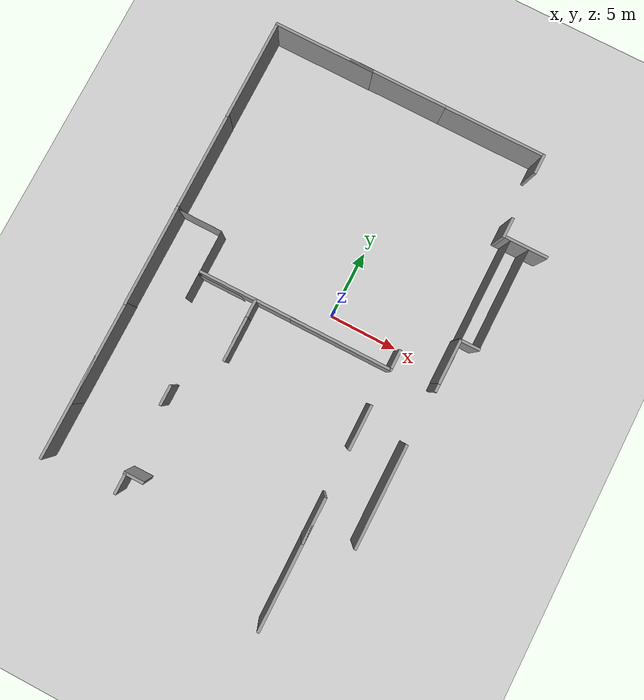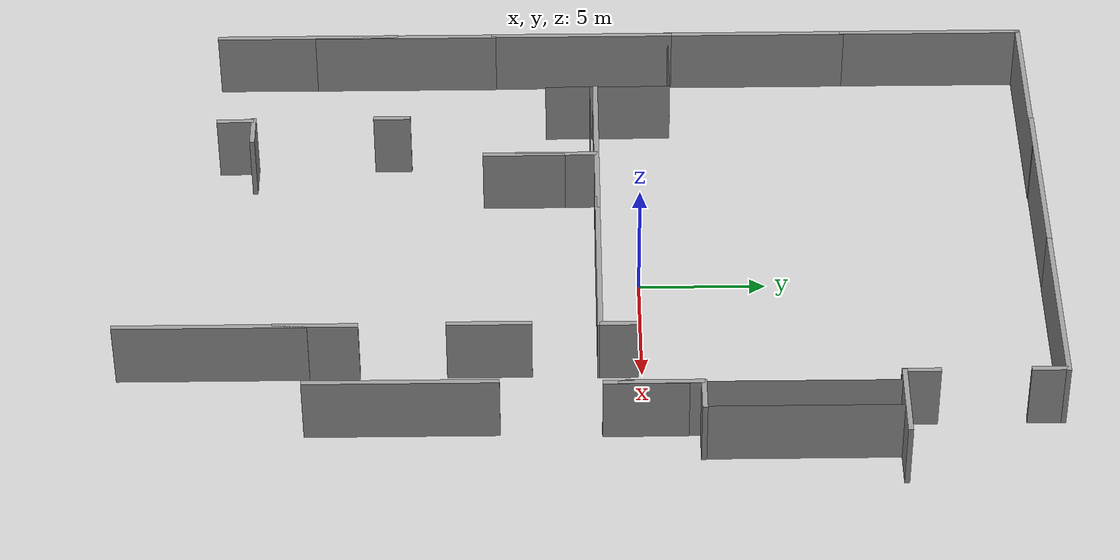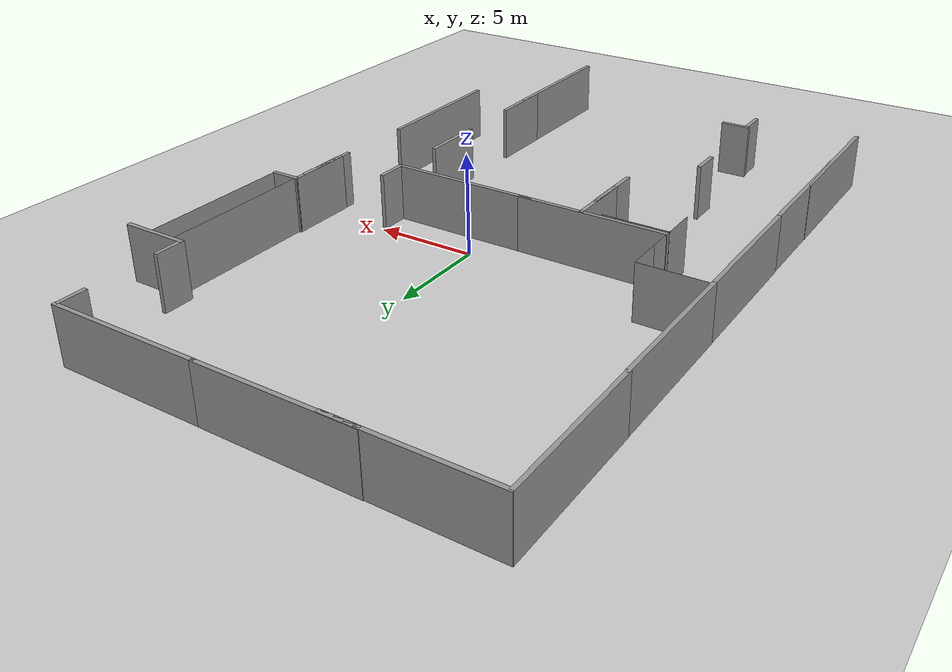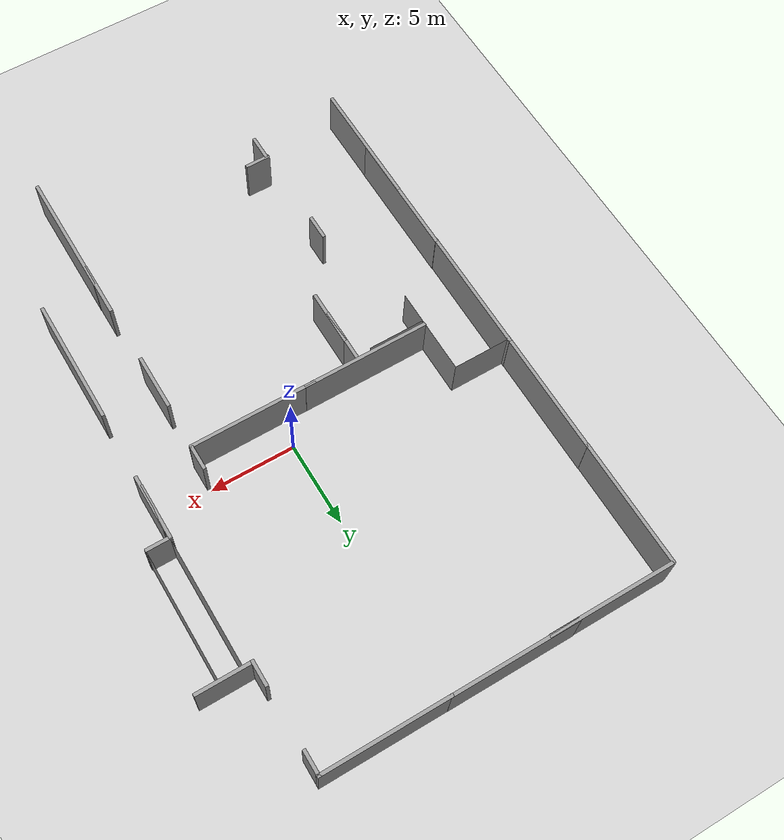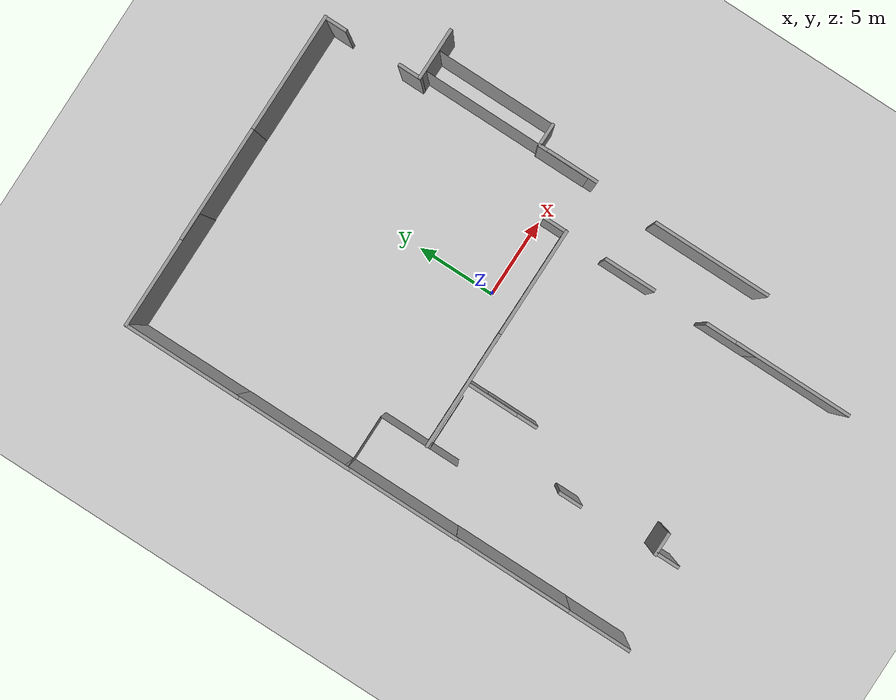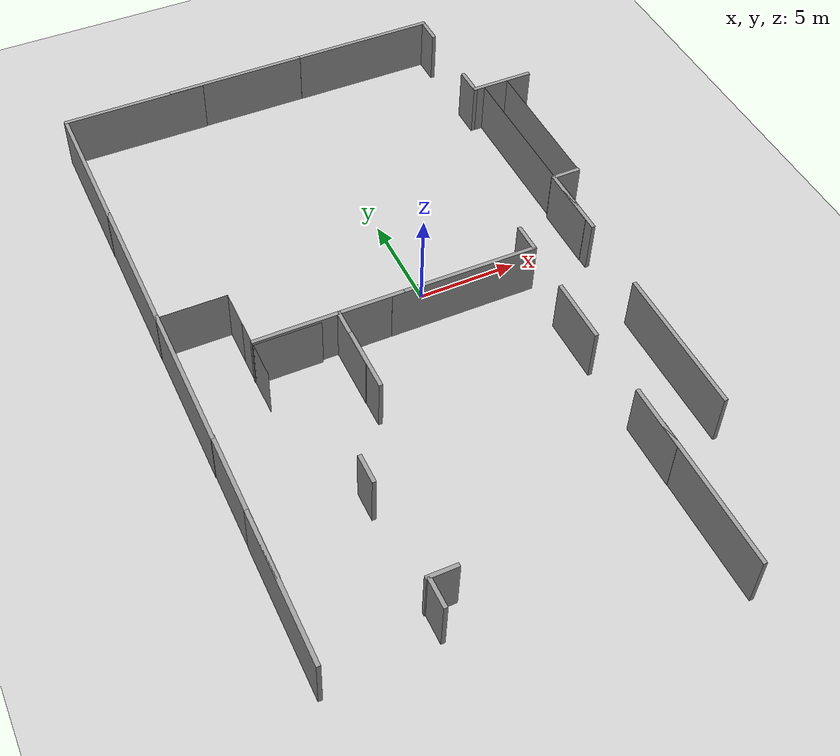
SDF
<sdf version="1.7">
 <world name="default">
  <model name="ground_plane">
   <static>1</static>
   <link name="link">
    <collision name="collision">
     <geometry><plane><normal>0 0 1</normal><size>100 100</size></plane></geometry>
     <surface>
      <contact><collide_bitmask>65535</collide_bitmask></contact>
      <friction><ode><mu>100</mu><mu2>50</mu2></ode></friction>
     </surface>
    </collision>
    <visual name="visual">
     <cast_shadows>0</cast_shadows>
     <geometry><plane><normal>0 0 1</normal><size>100 100</size></plane></geometry>
     <material>
      <script><uri>file://media/materials/scripts/gazebo.material</uri><name>Gazebo/Grey</name></script>
     </material>
    </visual>
   </link>
  </model>
  <model name="grey_wall">
   <static>1</static>
   <link name="link">
    <pose>0 0 1.4 0 -0 0</pose>
    <collision name="collision"><geometry><box><size>7.5 0.2 2.8</size></box></geometry></collision>
    <visual name="visual">
     <cast_shadows>0</cast_shadows>
     <geometry><box><size>7.5 0.2 2.8</size></box></geometry>
     <material>
      <script>
       <uri>model://grey_wall/materials/scripts</uri>
       <uri>model://grey_wall/materials/textures</uri>
       <name>vrc/grey_wall</name>
      </script>
     </material>
    </visual>
   </link>
   <pose>4.11766 16.0782 0 0 -0 0</pose>
  </model>
  <model name="grey_wall_clone">
   <static>1</static>
   <link name="link">
    <pose>0 0 1.4 0 -0 0</pose>
    <collision name="collision"><geometry><box><size>7.5 0.2 2.8</size></box></geometry></collision>
    <visual name="visual">
     <cast_shadows>0</cast_shadows>
     <geometry><box><size>7.5 0.2 2.8</size></box></geometry>
     <material>
      <script>
       <uri>model://grey_wall/materials/scripts</uri>
       <uri>model://grey_wall/materials/textures</uri>
       <name>vrc/grey_wall</name>
      </script>
     </material>
    </visual>
   </link>
   <pose>-3.2022 16.0851 0 0 -0 0</pose>
  </model>
  <model name="grey_wall_clone_0">
   <static>1</static>
   <link name="link">
    <pose>0 0 1.4 0 -0 0</pose>
    <collision name="collision"><geometry><box><size>7.5 0.2 2.8</size></box></geometry></collision>
    <visual name="visual">
     <cast_shadows>0</cast_shadows>
     <geometry><box><size>7.5 0.2 2.8</size></box></geometry>
     <material>
      <script>
       <uri>model://grey_wall/materials/scripts</uri>
       <uri>model://grey_wall/materials/textures</uri>
       <name>vrc/grey_wall</name>
      </script>
     </material>
    </visual>
   </link>
   <pose>-8.91594 16.0599 0 0 -0 0</pose>
  </model>
  <model name="grey_wall_clone_2">
   <static>1</static>
   <link name="link">
    <pose>0 0 1.4 0 -0 0</pose>
    <collision name="collision"><geometry><box><size>7.5 0.2 2.8</size></box></geometry></collision>
    <visual name="visual">
     <cast_shadows>0</cast_shadows>
     <geometry><box><size>7.5 0.2 2.8</size></box></geometry>
     <material>
      <script>
       <uri>model://grey_wall/materials/scripts</uri>
       <uri>model://grey_wall/materials/textures</uri>
       <name>vrc/grey_wall</name>
      </script>
     </material>
    </visual>
   </link>
   <pose>-12.5815 12.3763 0 0 0 -1.5708</pose>
  </model>
  <model name="grey_wall_clone_2_clone">
   <static>1</static>
   <link name="link">
    <pose>0 0 1.4 0 -0 0</pose>
    <collision name="collision"><geometry><box><size>7.5 0.2 2.8</size></box></geometry></collision>
    <visual name="visual">
     <cast_shadows>0</cast_shadows>
     <geometry><box><size>7.5 0.2 2.8</size></box></geometry>
     <material>
      <script>
       <uri>model://grey_wall/materials/scripts</uri>
       <uri>model://grey_wall/materials/textures</uri>
       <name>vrc/grey_wall</name>
      </script>
     </material>
    </visual>
   </link>
   <pose>-12.5695 5.05048 0 0 0 -1.5708</pose>
  </model>
  <model name="grey_wall_clone_2_clone_0">
   <static>1</static>
   <link name="link">
    <pose>0 0 1.4 0 -0 0</pose>
    <collision name="collision"><geometry><box><size>7.5 0.2 2.8</size></box></geometry></collision>
    <visual name="visual">
     <cast_shadows>0</cast_shadows>
     <geometry><box><size>7.5 0.2 2.8</size></box></geometry>
     <material>
      <script>
       <uri>model://grey_wall/materials/scripts</uri>
       <uri>model://grey_wall/materials/textures</uri>
       <name>vrc/grey_wall</name>
      </script>
     </material>
    </visual>
   </link>
   <pose>-12.5572 -2.13055 0 0 0 -1.5708</pose>
  </model>
  <model name="grey_wall_clone_2_clone_1">
   <static>1</static>
   <link name="link">
    <pose>0 0 1.4 0 -0 0</pose>
    <collision name="collision"><geometry><box><size>7.5 0.2 2.8</size></box></geometry></collision>
    <visual name="visual">
     <cast_shadows>0</cast_shadows>
     <geometry><box><size>7.5 0.2 2.8</size></box></geometry>
     <material>
      <script>
       <uri>model://grey_wall/materials/scripts</uri>
       <uri>model://grey_wall/materials/textures</uri>
       <name>vrc/grey_wall</name>
      </script>
     </material>
    </visual>
   </link>
   <pose>-12.5371 -9.45403 0 0 0 -1.5708</pose>
  </model>
  <model name="grey_wall_clone_2_clone_2">
   <static>1</static>
   <link name="link">
    <pose>0 0 1.4 0 -0 0</pose>
    <collision name="collision"><geometry><box><size>7.5 0.2 2.8</size></box></geometry></collision>
    <visual name="visual">
     <cast_shadows>0</cast_shadows>
     <geometry><box><size>7.5 0.2 2.8</size></box></geometry>
     <material>
      <script>
       <uri>model://grey_wall/materials/scripts</uri>
       <uri>model://grey_wall/materials/textures</uri>
       <name>vrc/grey_wall</name>
      </script>
     </material>
    </visual>
   </link>
   <pose>-12.5493 -13.5009 0 0 0 -1.5708</pose>
  </model>
  <model name="half_slim_grey_wall">
   <link name="link">
    <pose>0 0 1.4 0 -0 0</pose>
    <inertial>
     <mass>1</mass>
     <inertia><ixx>1</ixx><ixy>0</ixy><ixz>0</ixz><iyy>1</iyy><iyz>0</iyz><izz>1</izz></inertia>
    </inertial>
    <visual name="visual">
     <cast_shadows>0</cast_shadows>
     <geometry><box><size>3.3 0.0001 2.8</size></box></geometry>
     <material>
      <script>
       <uri>model://grey_wall/materials/scripts</uri>
       <uri>model://grey_wall/materials/textures</uri>
       <name>vrc/grey_wall</name>
      </script>
      <shader type="pixel"><normal_map>__default__</normal_map></shader>
      <ambient>1 1 1 1</ambient>
      <diffuse>1 1 1 1</diffuse>
      <specular>0 0 0 1</specular>
      <emissive>0 0 0 1</emissive>
     </material>
    </visual>
    <collision name="collision">
     <geometry><box><size>3.3 0.2 2.8</size></box></geometry>
     <surface>
      <friction>
       <ode><mu>1</mu><mu2>1</mu2><fdir1>0 0 0</fdir1><slip1>0</slip1><slip2>0</slip2></ode>
       <torsional>
        <coefficient>1</coefficient>
        <patch_radius>0</patch_radius>
        <surface_radius>0</surface_radius>
        <use_patch_radius>1</use_patch_radius>
        <ode><slip>0</slip></ode>
       </torsional>
      </friction>
      <bounce><restitution_coefficient>0</restitution_coefficient><threshold>1e+06</threshold></bounce>
      <contact>
       <collide_without_contact>0</collide_without_contact>
       <collide_without_contact_bitmask>1</collide_without_contact_bitmask>
       <collide_bitmask>1</collide_bitmask>
       <ode>
        <soft_cfm>0</soft_cfm>
        <soft_erp>0.2</soft_erp>
        <kp>1e+13</kp>
        <kd>1</kd>
        <max_vel>0.01</max_vel>
        <min_depth>0</min_depth>
       </ode>
       <bullet>
        <split_impulse>1</split_impulse>
        <split_impulse_penetration_threshold>-0.01</split_impulse_penetration_threshold>
        <soft_cfm>0</soft_cfm>
        <soft_erp>0.2</soft_erp>
        <kp>1e+13</kp>
        <kd>1</kd>
       </bullet>
      </contact>
     </surface>
    </collision>
   </link>
   <static>1</static>
   <pose>-10.8124 1.45364 0 0 -0 0</pose>
  </model>
  <model name="half_slim_grey_wall_clone">
   <link name="link">
    <pose>0 0 1.4 0 -0 0</pose>
    <inertial>
     <mass>1</mass>
     <inertia><ixx>1</ixx><ixy>0</ixy><ixz>0</ixz><iyy>1</iyy><iyz>0</iyz><izz>1</izz></inertia>
    </inertial>
    <visual name="visual">
     <cast_shadows>0</cast_shadows>
     <geometry><box><size>3.3 0.0001 2.8</size></box></geometry>
     <material>
      <script>
       <uri>model://grey_wall/materials/scripts</uri>
       <uri>model://grey_wall/materials/textures</uri>
       <name>vrc/grey_wall</name>
      </script>
      <shader type="pixel"><normal_map>__default__</normal_map></shader>
      <ambient>1 1 1 1</ambient>
      <diffuse>1 1 1 1</diffuse>
      <specular>0 0 0 1</specular>
      <emissive>0 0 0 1</emissive>
     </material>
    </visual>
    <collision name="collision">
     <geometry><box><size>3.3 0.2 2.8</size></box></geometry>
     <surface>
      <friction>
       <ode><mu>1</mu><mu2>1</mu2><fdir1>0 0 0</fdir1><slip1>0</slip1><slip2>0</slip2></ode>
       <torsional>
        <coefficient>1</coefficient>
        <patch_radius>0</patch_radius>
        <surface_radius>0</surface_radius>
        <use_patch_radius>1</use_patch_radius>
        <ode><slip>0</slip></ode>
       </torsional>
      </friction>
      <bounce><restitution_coefficient>0</restitution_coefficient><threshold>1e+06</threshold></bounce>
      <contact>
       <collide_without_contact>0</collide_without_contact>
       <collide_without_contact_bitmask>1</collide_without_contact_bitmask>
       <collide_bitmask>1</collide_bitmask>
       <ode>
        <soft_cfm>0</soft_cfm>
        <soft_erp>0.2</soft_erp>
        <kp>1e+13</kp>
        <kd>1</kd>
        <max_vel>0.01</max_vel>
        <min_depth>0</min_depth>
       </ode>
       <bullet>
        <split_impulse>1</split_impulse>
        <split_impulse_penetration_threshold>-0.01</split_impulse_penetration_threshold>
        <soft_cfm>0</soft_cfm>
        <soft_erp>0.2</soft_erp>
        <kp>1e+13</kp>
        <kd>1</kd>
       </bullet>
      </contact>
     </surface>
    </collision>
   </link>
   <static>1</static>
   <pose>-9.17654 -0.189793 0 0 0 -1.5708</pose>
  </model>
  <model name="slim_grey_wall">
   <link name="link">
    <pose>0 0 1.4 0 -0 0</pose>
    <inertial>
     <mass>1</mass>
     <inertia><ixx>1</ixx><ixy>0</ixy><ixz>0</ixz><iyy>1</iyy><iyz>0</iyz><izz>1</izz></inertia>
    </inertial>
    <visual name="visual">
     <cast_shadows>0</cast_shadows>
     <geometry><box><size>7.5 0.0001 2.8</size></box></geometry>
     <material>
      <script>
       <uri>model://grey_wall/materials/scripts</uri>
       <uri>model://grey_wall/materials/textures</uri>
       <name>vrc/grey_wall</name>
      </script>
      <shader type="pixel"><normal_map>__default__</normal_map></shader>
      <ambient>1 1 1 1</ambient>
      <diffuse>1 1 1 1</diffuse>
      <specular>0 0 0 1</specular>
      <emissive>0 0 0 1</emissive>
     </material>
    </visual>
    <collision name="collision">
     <geometry><box><size>7.5 0.2 2.8</size></box></geometry>
     <surface>
      <friction>
       <ode><mu>1</mu><mu2>1</mu2><fdir1>0 0 0</fdir1><slip1>0</slip1><slip2>0</slip2></ode>
       <torsional>
        <coefficient>1</coefficient>
        <patch_radius>0</patch_radius>
        <surface_radius>0</surface_radius>
        <use_patch_radius>1</use_patch_radius>
        <ode><slip>0</slip></ode>
       </torsional>
      </friction>
      <bounce><restitution_coefficient>0</restitution_coefficient><threshold>1e+06</threshold></bounce>
      <contact>
       <collide_without_contact>0</collide_without_contact>
       <collide_without_contact_bitmask>1</collide_without_contact_bitmask>
       <collide_bitmask>1</collide_bitmask>
       <ode>
        <soft_cfm>0</soft_cfm>
        <soft_erp>0.2</soft_erp>
        <kp>1e+13</kp>
        <kd>1</kd>
        <max_vel>0.01</max_vel>
        <min_depth>0</min_depth>
       </ode>
       <bullet>
        <split_impulse>1</split_impulse>
        <split_impulse_penetration_threshold>-0.01</split_impulse_penetration_threshold>
        <soft_cfm>0</soft_cfm>
        <soft_erp>0.2</soft_erp>
        <kp>1e+13</kp>
        <kd>1</kd>
       </bullet>
      </contact>
     </surface>
    </collision>
   </link>
   <static>1</static>
   <pose>8.30317 6.07879 0 0 0 -1.5708</pose>
  </model>
  <model name="slim_grey_wall_clone">
   <link name="link">
    <pose>0 0 1.4 0 -0 0</pose>
    <inertial>
     <mass>1</mass>
     <inertia><ixx>1</ixx><ixy>0</ixy><ixz>0</ixz><iyy>1</iyy><iyz>0</iyz><izz>1</izz></inertia>
    </inertial>
    <visual name="visual">
     <cast_shadows>0</cast_shadows>
     <geometry><box><size>7.5 0.0001 2.8</size></box></geometry>
     <material>
      <script>
       <uri>model://grey_wall/materials/scripts</uri>
       <uri>model://grey_wall/materials/textures</uri>
       <name>vrc/grey_wall</name>
      </script>
      <shader type="pixel"><normal_map>__default__</normal_map></shader>
      <ambient>1 1 1 1</ambient>
      <diffuse>1 1 1 1</diffuse>
      <specular>0 0 0 1</specular>
      <emissive>0 0 0 1</emissive>
     </material>
    </visual>
    <collision name="collision">
     <geometry><box><size>7.5 0.2 2.8</size></box></geometry>
     <surface>
      <friction>
       <ode><mu>1</mu><mu2>1</mu2><fdir1>0 0 0</fdir1><slip1>0</slip1><slip2>0</slip2></ode>
       <torsional>
        <coefficient>1</coefficient>
        <patch_radius>0</patch_radius>
        <surface_radius>0</surface_radius>
        <use_patch_radius>1</use_patch_radius>
        <ode><slip>0</slip></ode>
       </torsional>
      </friction>
      <bounce><restitution_coefficient>0</restitution_coefficient><threshold>1e+06</threshold></bounce>
      <contact>
       <collide_without_contact>0</collide_without_contact>
       <collide_without_contact_bitmask>1</collide_without_contact_bitmask>
       <collide_bitmask>1</collide_bitmask>
       <ode>
        <soft_cfm>0</soft_cfm>
        <soft_erp>0.2</soft_erp>
        <kp>1e+13</kp>
        <kd>1</kd>
        <max_vel>0.01</max_vel>
        <min_depth>0</min_depth>
       </ode>
       <bullet>
        <split_impulse>1</split_impulse>
        <split_impulse_penetration_threshold>-0.01</split_impulse_penetration_threshold>
        <soft_cfm>0</soft_cfm>
        <soft_erp>0.2</soft_erp>
        <kp>1e+13</kp>
        <kd>1</kd>
       </bullet>
      </contact>
     </surface>
    </collision>
   </link>
   <static>1</static>
   <pose>9.64703 6.00773 0 0 0 -1.5708</pose>
  </model>
  <model name="half_slim_grey_wall_clone_clone">
   <link name="link">
    <pose>0 0 1.4 0 -0 0</pose>
    <inertial>
     <mass>1</mass>
     <inertia><ixx>1</ixx><ixy>0</ixy><ixz>0</ixz><iyy>1</iyy><iyz>0</iyz><izz>1</izz></inertia>
    </inertial>
    <visual name="visual">
     <cast_shadows>0</cast_shadows>
     <geometry><box><size>3.3 0.0001 2.8</size></box></geometry>
     <material>
      <script>
       <uri>model://grey_wall/materials/scripts</uri>
       <uri>model://grey_wall/materials/textures</uri>
       <name>vrc/grey_wall</name>
      </script>
      <shader type="pixel"><normal_map>__default__</normal_map></shader>
      <ambient>1 1 1 1</ambient>
      <diffuse>1 1 1 1</diffuse>
      <specular>0 0 0 1</specular>
      <emissive>0 0 0 1</emissive>
     </material>
    </visual>
    <collision name="collision">
     <geometry><box><size>3.3 0.2 2.8</size></box></geometry>
     <surface>
      <friction>
       <ode><mu>1</mu><mu2>1</mu2><fdir1>0 0 0</fdir1><slip1>0</slip1><slip2>0</slip2></ode>
       <torsional>
        <coefficient>1</coefficient>
        <patch_radius>0</patch_radius>
        <surface_radius>0</surface_radius>
        <use_patch_radius>1</use_patch_radius>
        <ode><slip>0</slip></ode>
       </torsional>
      </friction>
      <bounce><restitution_coefficient>0</restitution_coefficient><threshold>1e+06</threshold></bounce>
      <contact>
       <collide_without_contact>0</collide_without_contact>
       <collide_without_contact_bitmask>1</collide_without_contact_bitmask>
       <collide_bitmask>1</collide_bitmask>
       <ode>
        <soft_cfm>0</soft_cfm>
        <soft_erp>0.2</soft_erp>
        <kp>1e+13</kp>
        <kd>1</kd>
        <max_vel>0.01</max_vel>
        <min_depth>0</min_depth>
       </ode>
       <bullet>
        <split_impulse>1</split_impulse>
        <split_impulse_penetration_threshold>-0.01</split_impulse_penetration_threshold>
        <soft_cfm>0</soft_cfm>
        <soft_erp>0.2</soft_erp>
        <kp>1e+13</kp>
        <kd>1</kd>
       </bullet>
      </contact>
     </surface>
    </collision>
   </link>
   <static>1</static>
   <pose>-9.17683 -1.99265 0 0 0 -1.5708</pose>
  </model>
  <model name="grey_wall_clone_0_clone">
   <static>1</static>
   <link name="link">
    <pose>0 0 1.4 0 -0 0</pose>
    <collision name="collision"><geometry><box><size>7.5 0.2 2.8</size></box></geometry></collision>
    <visual name="visual">
     <cast_shadows>0</cast_shadows>
     <geometry><box><size>7.5 0.2 2.8</size></box></geometry>
     <material>
      <script>
       <uri>model://grey_wall/materials/scripts</uri>
       <uri>model://grey_wall/materials/textures</uri>
       <name>vrc/grey_wall</name>
      </script>
     </material>
    </visual>
   </link>
   <pose>-5.45445 -1.61024 0 0 -0 0</pose>
  </model>
  <model name="grey_wall_clone_0_clone_0">
   <static>1</static>
   <link name="link">
    <pose>0 0 1.4 0 -0 0</pose>
    <collision name="collision"><geometry><box><size>7.5 0.2 2.8</size></box></geometry></collision>
    <visual name="visual">
     <cast_shadows>0</cast_shadows>
     <geometry><box><size>7.5 0.2 2.8</size></box></geometry>
     <material>
      <script>
       <uri>model://grey_wall/materials/scripts</uri>
       <uri>model://grey_wall/materials/textures</uri>
       <name>vrc/grey_wall</name>
      </script>
     </material>
    </visual>
   </link>
   <pose>1.39307 -1.61725 0 0 -0 0</pose>
  </model>
  <model name="grey_wall_clone_2_clone_clone_clone">
   <static>1</static>
   <link name="link">
    <pose>0 0 1.4 0 -0 0</pose>
    <collision name="collision"><geometry><box><size>7.5 0.2 2.8</size></box></geometry></collision>
    <visual name="visual">
     <cast_shadows>0</cast_shadows>
     <geometry><box><size>7.5 0.2 2.8</size></box></geometry>
     <material>
      <script>
       <uri>model://grey_wall/materials/scripts</uri>
       <uri>model://grey_wall/materials/textures</uri>
       <name>vrc/grey_wall</name>
      </script>
     </material>
    </visual>
   </link>
   <pose>5.03836 -16.6141 0 0 0 -1.5708</pose>
  </model>
  <model name="half_slim_grey_wall_clone_0">
   <link name="link">
    <pose>0 0 1.4 0 -0 0</pose>
    <inertial>
     <mass>1</mass>
     <inertia><ixx>1</ixx><ixy>0</ixy><ixz>0</ixz><iyy>1</iyy><iyz>0</iyz><izz>1</izz></inertia>
    </inertial>
    <visual name="visual">
     <cast_shadows>0</cast_shadows>
     <geometry><box><size>3.3 0.0001 2.8</size></box></geometry>
     <material>
      <script>
       <uri>model://grey_wall/materials/scripts</uri>
       <uri>model://grey_wall/materials/textures</uri>
       <name>vrc/grey_wall</name>
      </script>
      <shader type="pixel"><normal_map>__default__</normal_map></shader>
      <ambient>1 1 1 1</ambient>
      <diffuse>1 1 1 1</diffuse>
      <specular>0 0 0 1</specular>
      <emissive>0 0 0 1</emissive>
     </material>
    </visual>
    <collision name="collision">
     <geometry><box><size>3.3 0.2 2.8</size></box></geometry>
     <surface>
      <friction>
       <ode><mu>1</mu><mu2>1</mu2><fdir1>0 0 0</fdir1><slip1>0</slip1><slip2>0</slip2></ode>
       <torsional>
        <coefficient>1</coefficient>
        <patch_radius>0</patch_radius>
        <surface_radius>0</surface_radius>
        <use_patch_radius>1</use_patch_radius>
        <ode><slip>0</slip></ode>
       </torsional>
      </friction>
      <bounce><restitution_coefficient>0</restitution_coefficient><threshold>1e+06</threshold></bounce>
      <contact>
       <collide_without_contact>0</collide_without_contact>
       <collide_without_contact_bitmask>1</collide_without_contact_bitmask>
       <collide_bitmask>1</collide_bitmask>
       <ode>
        <soft_cfm>0</soft_cfm>
        <soft_erp>0.2</soft_erp>
        <kp>1e+13</kp>
        <kd>1</kd>
        <max_vel>0.01</max_vel>
        <min_depth>0</min_depth>
       </ode>
       <bullet>
        <split_impulse>1</split_impulse>
        <split_impulse_penetration_threshold>-0.01</split_impulse_penetration_threshold>
        <soft_cfm>0</soft_cfm>
        <soft_erp>0.2</soft_erp>
        <kp>1e+13</kp>
        <kd>1</kd>
       </bullet>
      </contact>
     </surface>
    </collision>
   </link>
   <static>1</static>
   <pose>-7.53352 -1.83009 0 0 -0 0</pose>
  </model>
  <model name="grey_wall_clone_2_clone_clone_clone_0">
   <static>1</static>
   <link name="link">
    <pose>0 0 1.4 0 -0 0</pose>
    <collision name="collision"><geometry><box><size>7.5 0.2 2.8</size></box></geometry></collision>
    <visual name="visual">
     <cast_shadows>0</cast_shadows>
     <geometry><box><size>7.5 0.2 2.8</size></box></geometry>
     <material>
      <script>
       <uri>model://grey_wall/materials/scripts</uri>
       <uri>model://grey_wall/materials/textures</uri>
       <name>vrc/grey_wall</name>
      </script>
     </material>
    </visual>
   </link>
   <pose>8.17975 -9.2229 0 0 0 -1.5708</pose>
  </model>
  <model name="half_wall">
   <link name="link">
    <pose>0 0 1.4 0 -0 0</pose>
    <inertial>
     <mass>1</mass>
     <inertia><ixx>1</ixx><ixy>0</ixy><ixz>0</ixz><iyy>1</iyy><iyz>0</iyz><izz>1</izz></inertia>
    </inertial>
    <visual name="visual">
     <cast_shadows>0</cast_shadows>
     <geometry><box><size>1.5 0.2 2.8</size></box></geometry>
     <material>
      <script>
       <uri>model://grey_wall/materials/scripts</uri>
       <uri>model://grey_wall/materials/textures</uri>
       <name>vrc/grey_wall</name>
      </script>
      <shader type="pixel"><normal_map>__default__</normal_map></shader>
      <ambient>1 1 1 1</ambient>
      <diffuse>1 1 1 1</diffuse>
      <specular>0 0 0 1</specular>
      <emissive>0 0 0 1</emissive>
     </material>
    </visual>
    <collision name="collision">
     <geometry><box><size>1.5 0.2 2.8</size></box></geometry>
     <surface>
      <friction>
       <ode><mu>1</mu><mu2>1</mu2><fdir1>0 0 0</fdir1><slip1>0</slip1><slip2>0</slip2></ode>
       <torsional>
        <coefficient>1</coefficient>
        <patch_radius>0</patch_radius>
        <surface_radius>0</surface_radius>
        <use_patch_radius>1</use_patch_radius>
        <ode><slip>0</slip></ode>
       </torsional>
      </friction>
      <bounce><restitution_coefficient>0</restitution_coefficient><threshold>1e+06</threshold></bounce>
      <contact>
       <collide_without_contact>0</collide_without_contact>
       <collide_without_contact_bitmask>1</collide_without_contact_bitmask>
       <collide_bitmask>1</collide_bitmask>
       <ode>
        <soft_cfm>0</soft_cfm>
        <soft_erp>0.2</soft_erp>
        <kp>1e+13</kp>
        <kd>1</kd>
        <max_vel>0.01</max_vel>
        <min_depth>0</min_depth>
       </ode>
       <bullet>
        <split_impulse>1</split_impulse>
        <split_impulse_penetration_threshold>-0.01</split_impulse_penetration_threshold>
        <soft_cfm>0</soft_cfm>
        <soft_erp>0.2</soft_erp>
        <kp>1e+13</kp>
        <kd>1</kd>
       </bullet>
      </contact>
     </surface>
    </collision>
   </link>
   <static>1</static>
   <pose>7.78496 10.5023 0 0 0 -1.5708</pose>
  </model>
  <model name="half_wall_clone">
   <link name="link">
    <pose>0 0 1.4 0 -0 0</pose>
    <inertial>
     <mass>1</mass>
     <inertia><ixx>1</ixx><ixy>0</ixy><ixz>0</ixz><iyy>1</iyy><iyz>0</iyz><izz>1</izz></inertia>
    </inertial>
    <visual name="visual">
     <cast_shadows>0</cast_shadows>
     <geometry><box><size>1.5 0.2 2.8</size></box></geometry>
     <material>
      <script>
       <uri>model://grey_wall/materials/scripts</uri>
       <uri>model://grey_wall/materials/textures</uri>
       <name>vrc/grey_wall</name>
      </script>
      <shader type="pixel"><normal_map>__default__</normal_map></shader>
      <ambient>1 1 1 1</ambient>
      <diffuse>1 1 1 1</diffuse>
      <specular>0 0 0 1</specular>
      <emissive>0 0 0 1</emissive>
     </material>
    </visual>
    <collision name="collision">
     <geometry><box><size>1.5 0.2 2.8</size></box></geometry>
     <surface>
      <friction>
       <ode><mu>1</mu><mu2>1</mu2><fdir1>0 0 0</fdir1><slip1>0</slip1><slip2>0</slip2></ode>
       <torsional>
        <coefficient>1</coefficient>
        <patch_radius>0</patch_radius>
        <surface_radius>0</surface_radius>
        <use_patch_radius>1</use_patch_radius>
        <ode><slip>0</slip></ode>
       </torsional>
      </friction>
      <bounce><restitution_coefficient>0</restitution_coefficient><threshold>1e+06</threshold></bounce>
      <contact>
       <collide_without_contact>0</collide_without_contact>
       <collide_without_contact_bitmask>1</collide_without_contact_bitmask>
       <collide_bitmask>1</collide_bitmask>
       <ode>
        <soft_cfm>0</soft_cfm>
        <soft_erp>0.2</soft_erp>
        <kp>1e+13</kp>
        <kd>1</kd>
        <max_vel>0.01</max_vel>
        <min_depth>0</min_depth>
       </ode>
       <bullet>
        <split_impulse>1</split_impulse>
        <split_impulse_penetration_threshold>-0.01</split_impulse_penetration_threshold>
        <soft_cfm>0</soft_cfm>
        <soft_erp>0.2</soft_erp>
        <kp>1e+13</kp>
        <kd>1</kd>
       </bullet>
      </contact>
     </surface>
    </collision>
   </link>
   <static>1</static>
   <pose>7.75845 15.4269 0 0 0 -1.5708</pose>
  </model>
  <model name="half_wall_clone_0">
   <link name="link">
    <pose>0 0 1.4 0 -0 0</pose>
    <inertial>
     <mass>1</mass>
     <inertia><ixx>1</ixx><ixy>0</ixy><ixz>0</ixz><iyy>1</iyy><iyz>0</iyz><izz>1</izz></inertia>
    </inertial>
    <visual name="visual">
     <cast_shadows>0</cast_shadows>
     <geometry><box><size>1.5 0.2 2.8</size></box></geometry>
     <material>
      <script>
       <uri>model://grey_wall/materials/scripts</uri>
       <uri>model://grey_wall/materials/textures</uri>
       <name>vrc/grey_wall</name>
      </script>
      <shader type="pixel"><normal_map>__default__</normal_map></shader>
      <ambient>1 1 1 1</ambient>
      <diffuse>1 1 1 1</diffuse>
      <specular>0 0 0 1</specular>
      <emissive>0 0 0 1</emissive>
     </material>
    </visual>
    <collision name="collision">
     <geometry><box><size>1.5 0.2 2.8</size></box></geometry>
     <surface>
      <friction>
       <ode><mu>1</mu><mu2>1</mu2><fdir1>0 0 0</fdir1><slip1>0</slip1><slip2>0</slip2></ode>
       <torsional>
        <coefficient>1</coefficient>
        <patch_radius>0</patch_radius>
        <surface_radius>0</surface_radius>
        <use_patch_radius>1</use_patch_radius>
        <ode><slip>0</slip></ode>
       </torsional>
      </friction>
      <bounce><restitution_coefficient>0</restitution_coefficient><threshold>1e+06</threshold></bounce>
      <contact>
       <collide_without_contact>0</collide_without_contact>
       <collide_without_contact_bitmask>1</collide_without_contact_bitmask>
       <collide_bitmask>1</collide_bitmask>
       <ode>
        <soft_cfm>0</soft_cfm>
        <soft_erp>0.2</soft_erp>
        <kp>1e+13</kp>
        <kd>1</kd>
        <max_vel>0.01</max_vel>
        <min_depth>0</min_depth>
       </ode>
       <bullet>
        <split_impulse>1</split_impulse>
        <split_impulse_penetration_threshold>-0.01</split_impulse_penetration_threshold>
        <soft_cfm>0</soft_cfm>
        <soft_erp>0.2</soft_erp>
        <kp>1e+13</kp>
        <kd>1</kd>
       </bullet>
      </contact>
     </surface>
    </collision>
   </link>
   <static>1</static>
   <pose>5.04916 -0.891988 0 0 0 -1.5708</pose>
  </model>
  <model name="half_wall_clone_1">
   <link name="link">
    <pose>0 0 1.4 0 -0 0</pose>
    <inertial>
     <mass>1</mass>
     <inertia><ixx>1</ixx><ixy>0</ixy><ixz>0</ixz><iyy>1</iyy><iyz>0</iyz><izz>1</izz></inertia>
    </inertial>
    <visual name="visual">
     <cast_shadows>0</cast_shadows>
     <geometry><box><size>1.5 0.2 2.8</size></box></geometry>
     <material>
      <script>
       <uri>model://grey_wall/materials/scripts</uri>
       <uri>model://grey_wall/materials/textures</uri>
       <name>vrc/grey_wall</name>
      </script>
      <shader type="pixel"><normal_map>__default__</normal_map></shader>
      <ambient>1 1 1 1</ambient>
      <diffuse>1 1 1 1</diffuse>
      <specular>0 0 0 1</specular>
      <emissive>0 0 0 1</emissive>
     </material>
    </visual>
    <collision name="collision">
     <geometry><box><size>1.5 0.2 2.8</size></box></geometry>
     <surface>
      <friction>
       <ode><mu>1</mu><mu2>1</mu2><fdir1>0 0 0</fdir1><slip1>0</slip1><slip2>0</slip2></ode>
       <torsional>
        <coefficient>1</coefficient>
        <patch_radius>0</patch_radius>
        <surface_radius>0</surface_radius>
        <use_patch_radius>1</use_patch_radius>
        <ode><slip>0</slip></ode>
       </torsional>
      </friction>
      <bounce><restitution_coefficient>0</restitution_coefficient><threshold>1e+06</threshold></bounce>
      <contact>
       <collide_without_contact>0</collide_without_contact>
       <collide_without_contact_bitmask>1</collide_without_contact_bitmask>
       <collide_bitmask>1</collide_bitmask>
       <ode>
        <soft_cfm>0</soft_cfm>
        <soft_erp>0.2</soft_erp>
        <kp>1e+13</kp>
        <kd>1</kd>
        <max_vel>0.01</max_vel>
        <min_depth>0</min_depth>
       </ode>
       <bullet>
        <split_impulse>1</split_impulse>
        <split_impulse_penetration_threshold>-0.01</split_impulse_penetration_threshold>
        <soft_cfm>0</soft_cfm>
        <soft_erp>0.2</soft_erp>
        <kp>1e+13</kp>
        <kd>1</kd>
       </bullet>
      </contact>
     </surface>
    </collision>
   </link>
   <static>1</static>
   <pose>-7.30109 -9.89868 0 0 0 -1.5708</pose>
  </model>
  <model name="half_wall_clone_2_clone">
   <link name="link">
    <pose>0 0 1.4 0 -0 0</pose>
    <inertial>
     <mass>1</mass>
     <inertia><ixx>1</ixx><ixy>0</ixy><ixz>0</ixz><iyy>1</iyy><iyz>0</iyz><izz>1</izz></inertia>
    </inertial>
    <visual name="visual">
     <cast_shadows>0</cast_shadows>
     <geometry><box><size>1.5 0.2 2.8</size></box></geometry>
     <material>
      <script>
       <uri>model://grey_wall/materials/scripts</uri>
       <uri>model://grey_wall/materials/textures</uri>
       <name>vrc/grey_wall</name>
      </script>
      <shader type="pixel"><normal_map>__default__</normal_map></shader>
      <ambient>1 1 1 1</ambient>
      <diffuse>1 1 1 1</diffuse>
      <specular>0 0 0 1</specular>
      <emissive>0 0 0 1</emissive>
     </material>
    </visual>
    <collision name="collision">
     <geometry><box><size>1.5 0.2 2.8</size></box></geometry>
     <surface>
      <friction>
       <ode><mu>1</mu><mu2>1</mu2><fdir1>0 0 0</fdir1><slip1>0</slip1><slip2>0</slip2></ode>
       <torsional>
        <coefficient>1</coefficient>
        <patch_radius>0</patch_radius>
        <surface_radius>0</surface_radius>
        <use_patch_radius>1</use_patch_radius>
        <ode><slip>0</slip></ode>
       </torsional>
      </friction>
      <bounce><restitution_coefficient>0</restitution_coefficient><threshold>1e+06</threshold></bounce>
      <contact>
       <collide_without_contact>0</collide_without_contact>
       <collide_without_contact_bitmask>1</collide_without_contact_bitmask>
       <collide_bitmask>1</collide_bitmask>
       <ode>
        <soft_cfm>0</soft_cfm>
        <soft_erp>0.2</soft_erp>
        <kp>1e+13</kp>
        <kd>1</kd>
        <max_vel>0.01</max_vel>
        <min_depth>0</min_depth>
       </ode>
       <bullet>
        <split_impulse>1</split_impulse>
        <split_impulse_penetration_threshold>-0.01</split_impulse_penetration_threshold>
        <soft_cfm>0</soft_cfm>
        <soft_erp>0.2</soft_erp>
        <kp>1e+13</kp>
        <kd>1</kd>
       </bullet>
      </contact>
     </surface>
    </collision>
   </link>
   <static>1</static>
   <pose>-6.59637 -15.5113 0 0 -0 3.14159</pose>
  </model>
  <model name="half_wall_clone_2_clone_clone_3">
   <link name="link">
    <pose>0 0 1.4 0 -0 0</pose>
    <inertial>
     <mass>1</mass>
     <inertia><ixx>1</ixx><ixy>0</ixy><ixz>0</ixz><iyy>1</iyy><iyz>0</iyz><izz>1</izz></inertia>
    </inertial>
    <visual name="visual">
     <cast_shadows>0</cast_shadows>
     <geometry><box><size>1.5 0.2 2.8</size></box></geometry>
     <material>
      <script>
       <uri>model://grey_wall/materials/scripts</uri>
       <uri>model://grey_wall/materials/textures</uri>
       <name>vrc/grey_wall</name>
      </script>
      <shader type="pixel"><normal_map>__default__</normal_map></shader>
      <ambient>1 1 1 1</ambient>
      <diffuse>1 1 1 1</diffuse>
      <specular>0 0 0 1</specular>
      <emissive>0 0 0 1</emissive>
     </material>
    </visual>
    <collision name="collision">
     <geometry><box><size>1.5 0.2 2.8</size></box></geometry>
     <surface>
      <friction>
       <ode><mu>1</mu><mu2>1</mu2><fdir1>0 0 0</fdir1><slip1>0</slip1><slip2>0</slip2></ode>
       <torsional>
        <coefficient>1</coefficient>
        <patch_radius>0</patch_radius>
        <surface_radius>0</surface_radius>
        <use_patch_radius>1</use_patch_radius>
        <ode><slip>0</slip></ode>
       </torsional>
      </friction>
      <bounce><restitution_coefficient>0</restitution_coefficient><threshold>1e+06</threshold></bounce>
      <contact>
       <collide_without_contact>0</collide_without_contact>
       <collide_without_contact_bitmask>1</collide_without_contact_bitmask>
       <collide_bitmask>1</collide_bitmask>
       <ode>
        <soft_cfm>0</soft_cfm>
        <soft_erp>0.2</soft_erp>
        <kp>1e+13</kp>
        <kd>1</kd>
        <max_vel>0.01</max_vel>
        <min_depth>0</min_depth>
       </ode>
       <bullet>
        <split_impulse>1</split_impulse>
        <split_impulse_penetration_threshold>-0.01</split_impulse_penetration_threshold>
        <soft_cfm>0</soft_cfm>
        <soft_erp>0.2</soft_erp>
        <kp>1e+13</kp>
        <kd>1</kd>
       </bullet>
      </contact>
     </surface>
    </collision>
   </link>
   <static>1</static>
   <pose>8.94646 2.24632 0 0 -0 3.14159</pose>
  </model>
  <model name="fixed_half">
   <link name="link">
    <pose>0 0 1.4 0 -0 0</pose>
    <inertial>
     <mass>1</mass>
     <inertia><ixx>1</ixx><ixy>0</ixy><ixz>0</ixz><iyy>1</iyy><iyz>0</iyz><izz>1</izz></inertia>
    </inertial>
    <visual name="visual">
     <cast_shadows>0</cast_shadows>
     <geometry><box><size>3.3 0.2 2.8</size></box></geometry>
     <material>
      <script>
       <uri>model://grey_wall/materials/scripts</uri>
       <uri>model://grey_wall/materials/textures</uri>
       <name>vrc/grey_wall</name>
      </script>
      <shader type="pixel"><normal_map>__default__</normal_map></shader>
      <ambient>1 1 1 1</ambient>
      <diffuse>1 1 1 1</diffuse>
      <specular>0 0 0 1</specular>
      <emissive>0 0 0 1</emissive>
     </material>
    </visual>
    <collision name="collision">
     <geometry><box><size>3.3 0.2 2.8</size></box></geometry>
     <surface>
      <friction>
       <ode><mu>1</mu><mu2>1</mu2><fdir1>0 0 0</fdir1><slip1>0</slip1><slip2>0</slip2></ode>
       <torsional>
        <coefficient>1</coefficient>
        <patch_radius>0</patch_radius>
        <surface_radius>0</surface_radius>
        <use_patch_radius>1</use_patch_radius>
        <ode><slip>0</slip></ode>
       </torsional>
      </friction>
      <bounce><restitution_coefficient>0</restitution_coefficient><threshold>1e+06</threshold></bounce>
      <contact>
       <collide_without_contact>0</collide_without_contact>
       <collide_without_contact_bitmask>1</collide_without_contact_bitmask>
       <collide_bitmask>1</collide_bitmask>
       <ode>
        <soft_cfm>0</soft_cfm>
        <soft_erp>0.2</soft_erp>
        <kp>1e+13</kp>
        <kd>1</kd>
        <max_vel>0.01</max_vel>
        <min_depth>0</min_depth>
       </ode>
       <bullet>
        <split_impulse>1</split_impulse>
        <split_impulse_penetration_threshold>-0.01</split_impulse_penetration_threshold>
        <soft_cfm>0</soft_cfm>
        <soft_erp>0.2</soft_erp>
        <kp>1e+13</kp>
        <kd>1</kd>
       </bullet>
      </contact>
     </surface>
    </collision>
   </link>
   <static>1</static>
   <pose>4.98116 -5.8904 0 0 0 -1.5708</pose>
  </model>
  <model name="fixed_half_clone_0">
   <link name="link">
    <pose>0 0 1.4 0 -0 0</pose>
    <inertial>
     <mass>1</mass>
     <inertia><ixx>1</ixx><ixy>0</ixy><ixz>0</ixz><iyy>1</iyy><iyz>0</iyz><izz>1</izz></inertia>
    </inertial>
    <visual name="visual">
     <cast_shadows>0</cast_shadows>
     <geometry><box><size>3.3 0.2 2.8</size></box></geometry>
     <material>
      <script>
       <uri>model://grey_wall/materials/scripts</uri>
       <uri>model://grey_wall/materials/textures</uri>
       <name>vrc/grey_wall</name>
      </script>
      <shader type="pixel"><normal_map>__default__</normal_map></shader>
      <ambient>1 1 1 1</ambient>
      <diffuse>1 1 1 1</diffuse>
      <specular>0 0 0 1</specular>
      <emissive>0 0 0 1</emissive>
     </material>
    </visual>
    <collision name="collision">
     <geometry><box><size>3.3 0.2 2.8</size></box></geometry>
     <surface>
      <friction>
       <ode><mu>1</mu><mu2>1</mu2><fdir1>0 0 0</fdir1><slip1>0</slip1><slip2>0</slip2></ode>
       <torsional>
        <coefficient>1</coefficient>
        <patch_radius>0</patch_radius>
        <surface_radius>0</surface_radius>
        <use_patch_radius>1</use_patch_radius>
        <ode><slip>0</slip></ode>
       </torsional>
      </friction>
      <bounce><restitution_coefficient>0</restitution_coefficient><threshold>1e+06</threshold></bounce>
      <contact>
       <collide_without_contact>0</collide_without_contact>
       <collide_without_contact_bitmask>1</collide_without_contact_bitmask>
       <collide_bitmask>1</collide_bitmask>
       <ode>
        <soft_cfm>0</soft_cfm>
        <soft_erp>0.2</soft_erp>
        <kp>1e+13</kp>
        <kd>1</kd>
        <max_vel>0.01</max_vel>
        <min_depth>0</min_depth>
       </ode>
       <bullet>
        <split_impulse>1</split_impulse>
        <split_impulse_penetration_threshold>-0.01</split_impulse_penetration_threshold>
        <soft_cfm>0</soft_cfm>
        <soft_erp>0.2</soft_erp>
        <kp>1e+13</kp>
        <kd>1</kd>
       </bullet>
      </contact>
     </surface>
    </collision>
   </link>
   <static>1</static>
   <pose>8.29256 0.067619 0 0 0 -1.5708</pose>
  </model>
  <model name="fixed_half_clone_0_clone">
   <link name="link">
    <pose>0 0 1.4 0 -0 0</pose>
    <inertial>
     <mass>1</mass>
     <inertia><ixx>1</ixx><ixy>0</ixy><ixz>0</ixz><iyy>1</iyy><iyz>0</iyz><izz>1</izz></inertia>
    </inertial>
    <visual name="visual">
     <cast_shadows>0</cast_shadows>
     <geometry><box><size>3.3 0.2 2.8</size></box></geometry>
     <material>
      <script>
       <uri>model://grey_wall/materials/scripts</uri>
       <uri>model://grey_wall/materials/textures</uri>
       <name>vrc/grey_wall</name>
      </script>
      <shader type="pixel"><normal_map>__default__</normal_map></shader>
      <ambient>1 1 1 1</ambient>
      <diffuse>1 1 1 1</diffuse>
      <specular>0 0 0 1</specular>
      <emissive>0 0 0 1</emissive>
     </material>
    </visual>
    <collision name="collision">
     <geometry><box><size>3.3 0.2 2.8</size></box></geometry>
     <surface>
      <friction>
       <ode><mu>1</mu><mu2>1</mu2><fdir1>0 0 0</fdir1><slip1>0</slip1><slip2>0</slip2></ode>
       <torsional>
        <coefficient>1</coefficient>
        <patch_radius>0</patch_radius>
        <surface_radius>0</surface_radius>
        <use_patch_radius>1</use_patch_radius>
        <ode><slip>0</slip></ode>
       </torsional>
      </friction>
      <bounce><restitution_coefficient>0</restitution_coefficient><threshold>1e+06</threshold></bounce>
      <contact>
       <collide_without_contact>0</collide_without_contact>
       <collide_without_contact_bitmask>1</collide_without_contact_bitmask>
       <collide_bitmask>1</collide_bitmask>
       <ode>
        <soft_cfm>0</soft_cfm>
        <soft_erp>0.2</soft_erp>
        <kp>1e+13</kp>
        <kd>1</kd>
        <max_vel>0.01</max_vel>
        <min_depth>0</min_depth>
       </ode>
       <bullet>
        <split_impulse>1</split_impulse>
        <split_impulse_penetration_threshold>-0.01</split_impulse_penetration_threshold>
        <soft_cfm>0</soft_cfm>
        <soft_erp>0.2</soft_erp>
        <kp>1e+13</kp>
        <kd>1</kd>
       </bullet>
      </contact>
     </surface>
    </collision>
   </link>
   <static>1</static>
   <pose>9.36116 9.85751 0 0 -0 3.14159</pose>
  </model>
  <model name="fixed_half_clone_1">
   <link name="link">
    <pose>0 0 1.4 0 -0 0</pose>
    <inertial>
     <mass>1</mass>
     <inertia><ixx>1</ixx><ixy>0</ixy><ixz>0</ixz><iyy>1</iyy><iyz>0</iyz><izz>1</izz></inertia>
    </inertial>
    <visual name="visual">
     <cast_shadows>0</cast_shadows>
     <geometry><box><size>3.3 0.2 2.8</size></box></geometry>
     <material>
      <script>
       <uri>model://grey_wall/materials/scripts</uri>
       <uri>model://grey_wall/materials/textures</uri>
       <name>vrc/grey_wall</name>
      </script>
      <shader type="pixel"><normal_map>__default__</normal_map></shader>
      <ambient>1 1 1 1</ambient>
      <diffuse>1 1 1 1</diffuse>
      <specular>0 0 0 1</specular>
      <emissive>0 0 0 1</emissive>
     </material>
    </visual>
    <collision name="collision">
     <geometry><box><size>3.3 0.2 2.8</size></box></geometry>
     <surface>
      <friction>
       <ode><mu>1</mu><mu2>1</mu2><fdir1>0 0 0</fdir1><slip1>0</slip1><slip2>0</slip2></ode>
       <torsional>
        <coefficient>1</coefficient>
        <patch_radius>0</patch_radius>
        <surface_radius>0</surface_radius>
        <use_patch_radius>1</use_patch_radius>
        <ode><slip>0</slip></ode>
       </torsional>
      </friction>
      <bounce><restitution_coefficient>0</restitution_coefficient><threshold>1e+06</threshold></bounce>
      <contact>
       <collide_without_contact>0</collide_without_contact>
       <collide_without_contact_bitmask>1</collide_without_contact_bitmask>
       <collide_bitmask>1</collide_bitmask>
       <ode>
        <soft_cfm>0</soft_cfm>
        <soft_erp>0.2</soft_erp>
        <kp>1e+13</kp>
        <kd>1</kd>
        <max_vel>0.01</max_vel>
        <min_depth>0</min_depth>
       </ode>
       <bullet>
        <split_impulse>1</split_impulse>
        <split_impulse_penetration_threshold>-0.01</split_impulse_penetration_threshold>
        <soft_cfm>0</soft_cfm>
        <soft_erp>0.2</soft_erp>
        <kp>1e+13</kp>
        <kd>1</kd>
       </bullet>
      </contact>
     </surface>
    </collision>
   </link>
   <static>1</static>
   <pose>-4.97993 -3.21148 0 0 0 -1.5708</pose>
  </model>
  <model name="fixed_half_clone_2">
   <link name="link">
    <pose>0 0 1.4 0 -0 0</pose>
    <inertial>
     <mass>1</mass>
     <inertia><ixx>1</ixx><ixy>0</ixy><ixz>0</ixz><iyy>1</iyy><iyz>0</iyz><izz>1</izz></inertia>
    </inertial>
    <visual name="visual">
     <cast_shadows>0</cast_shadows>
     <geometry><box><size>3.3 0.2 2.8</size></box></geometry>
     <material>
      <script>
       <uri>model://grey_wall/materials/scripts</uri>
       <uri>model://grey_wall/materials/textures</uri>
       <name>vrc/grey_wall</name>
      </script>
      <shader type="pixel"><normal_map>__default__</normal_map></shader>
      <ambient>1 1 1 1</ambient>
      <diffuse>1 1 1 1</diffuse>
      <specular>0 0 0 1</specular>
      <emissive>0 0 0 1</emissive>
     </material>
    </visual>
    <collision name="collision">
     <geometry><box><size>3.3 0.2 2.8</size></box></geometry>
     <surface>
      <friction>
       <ode><mu>1</mu><mu2>1</mu2><fdir1>0 0 0</fdir1><slip1>0</slip1><slip2>0</slip2></ode>
       <torsional>
        <coefficient>1</coefficient>
        <patch_radius>0</patch_radius>
        <surface_radius>0</surface_radius>
        <use_patch_radius>1</use_patch_radius>
        <ode><slip>0</slip></ode>
       </torsional>
      </friction>
      <bounce><restitution_coefficient>0</restitution_coefficient><threshold>1e+06</threshold></bounce>
      <contact>
       <collide_without_contact>0</collide_without_contact>
       <collide_without_contact_bitmask>1</collide_without_contact_bitmask>
       <collide_bitmask>1</collide_bitmask>
       <ode>
        <soft_cfm>0</soft_cfm>
        <soft_erp>0.2</soft_erp>
        <kp>1e+13</kp>
        <kd>1</kd>
        <max_vel>0.01</max_vel>
        <min_depth>0</min_depth>
       </ode>
       <bullet>
        <split_impulse>1</split_impulse>
        <split_impulse_penetration_threshold>-0.01</split_impulse_penetration_threshold>
        <soft_cfm>0</soft_cfm>
        <soft_erp>0.2</soft_erp>
        <kp>1e+13</kp>
        <kd>1</kd>
       </bullet>
      </contact>
     </surface>
    </collision>
   </link>
   <static>1</static>
   <pose>-4.96474 -4.53813 0 0 0 -1.5708</pose>
  </model>
  <model name="fixed_half_clone_3">
   <link name="link">
    <pose>0 0 1.4 0 -0 0</pose>
    <inertial>
     <mass>1</mass>
     <inertia><ixx>1</ixx><ixy>0</ixy><ixz>0</ixz><iyy>1</iyy><iyz>0</iyz><izz>1</izz></inertia>
    </inertial>
    <visual name="visual">
     <cast_shadows>0</cast_shadows>
     <geometry><box><size>3.3 0.2 2.8</size></box></geometry>
     <material>
      <script>
       <uri>model://grey_wall/materials/scripts</uri>
       <uri>model://grey_wall/materials/textures</uri>
       <name>vrc/grey_wall</name>
      </script>
      <shader type="pixel"><normal_map>__default__</normal_map></shader>
      <ambient>1 1 1 1</ambient>
      <diffuse>1 1 1 1</diffuse>
      <specular>0 0 0 1</specular>
      <emissive>0 0 0 1</emissive>
     </material>
    </visual>
    <collision name="collision">
     <geometry><box><size>3.3 0.2 2.8</size></box></geometry>
     <surface>
      <friction>
       <ode><mu>1</mu><mu2>1</mu2><fdir1>0 0 0</fdir1><slip1>0</slip1><slip2>0</slip2></ode>
       <torsional>
        <coefficient>1</coefficient>
        <patch_radius>0</patch_radius>
        <surface_radius>0</surface_radius>
        <use_patch_radius>1</use_patch_radius>
        <ode><slip>0</slip></ode>
       </torsional>
      </friction>
      <bounce><restitution_coefficient>0</restitution_coefficient><threshold>1e+06</threshold></bounce>
      <contact>
       <collide_without_contact>0</collide_without_contact>
       <collide_without_contact_bitmask>1</collide_without_contact_bitmask>
       <collide_bitmask>1</collide_bitmask>
       <ode>
        <soft_cfm>0</soft_cfm>
        <soft_erp>0.2</soft_erp>
        <kp>1e+13</kp>
        <kd>1</kd>
        <max_vel>0.01</max_vel>
        <min_depth>0</min_depth>
       </ode>
       <bullet>
        <split_impulse>1</split_impulse>
        <split_impulse_penetration_threshold>-0.01</split_impulse_penetration_threshold>
        <soft_cfm>0</soft_cfm>
        <soft_erp>0.2</soft_erp>
        <kp>1e+13</kp>
        <kd>1</kd>
       </bullet>
      </contact>
     </surface>
    </collision>
   </link>
   <static>1</static>
   <pose>5.02304 -12.5535 0 0 0 -1.5708</pose>
  </model>
  <model name="half_wall_clone_0_clone">
   <link name="link">
    <pose>0 0 1.4 0 -0 0</pose>
    <inertial>
     <mass>1</mass>
     <inertia><ixx>1</ixx><ixy>0</ixy><ixz>0</ixz><iyy>1</iyy><iyz>0</iyz><izz>1</izz></inertia>
    </inertial>
    <visual name="visual">
     <cast_shadows>0</cast_shadows>
     <geometry><box><size>1.5 0.2 2.8</size></box></geometry>
     <material>
      <script>
       <uri>model://grey_wall/materials/scripts</uri>
       <uri>model://grey_wall/materials/textures</uri>
       <name>vrc/grey_wall</name>
      </script>
      <shader type="pixel"><normal_map>__default__</normal_map></shader>
      <ambient>1 1 1 1</ambient>
      <diffuse>1 1 1 1</diffuse>
      <specular>0 0 0 1</specular>
      <emissive>0 0 0 1</emissive>
     </material>
    </visual>
    <collision name="collision">
     <geometry><box><size>1.5 0.2 2.8</size></box></geometry>
     <surface>
      <friction>
       <ode><mu>1</mu><mu2>1</mu2><fdir1>0 0 0</fdir1><slip1>0</slip1><slip2>0</slip2></ode>
       <torsional>
        <coefficient>1</coefficient>
        <patch_radius>0</patch_radius>
        <surface_radius>0</surface_radius>
        <use_patch_radius>1</use_patch_radius>
        <ode><slip>0</slip></ode>
       </torsional>
      </friction>
      <bounce><restitution_coefficient>0</restitution_coefficient><threshold>1e+06</threshold></bounce>
      <contact>
       <collide_without_contact>0</collide_without_contact>
       <collide_without_contact_bitmask>1</collide_without_contact_bitmask>
       <collide_bitmask>1</collide_bitmask>
       <ode>
        <soft_cfm>0</soft_cfm>
        <soft_erp>0.2</soft_erp>
        <kp>1e+13</kp>
        <kd>1</kd>
        <max_vel>0.01</max_vel>
        <min_depth>0</min_depth>
       </ode>
       <bullet>
        <split_impulse>1</split_impulse>
        <split_impulse_penetration_threshold>-0.01</split_impulse_penetration_threshold>
        <soft_cfm>0</soft_cfm>
        <soft_erp>0.2</soft_erp>
        <kp>1e+13</kp>
        <kd>1</kd>
       </bullet>
      </contact>
     </surface>
    </collision>
   </link>
   <static>1</static>
   <pose>-7.18893 -16.2564 0 0 0 -1.5708</pose>
  </model>
  <model name="fixed_half_clone">
   <link name="link">
    <pose>0 0 1.4 0 -0 0</pose>
    <inertial>
     <mass>1</mass>
     <inertia><ixx>1</ixx><ixy>0</ixy><ixz>0</ixz><iyy>1</iyy><iyz>0</iyz><izz>1</izz></inertia>
    </inertial>
    <visual name="visual">
     <cast_shadows>0</cast_shadows>
     <geometry><box><size>3.3 0.2 2.8</size></box></geometry>
     <material>
      <script>
       <uri>model://grey_wall/materials/scripts</uri>
       <uri>model://grey_wall/materials/textures</uri>
       <name>vrc/grey_wall</name>
      </script>
      <shader type="pixel"><normal_map>__default__</normal_map></shader>
      <ambient>1 1 1 1</ambient>
      <diffuse>1 1 1 1</diffuse>
      <specular>0 0 0 1</specular>
      <emissive>0 0 0 1</emissive>
     </material>
    </visual>
    <collision name="collision">
     <geometry><box><size>3.3 0.2 2.8</size></box></geometry>
     <surface>
      <friction>
       <ode><mu>1</mu><mu2>1</mu2><fdir1>0 0 0</fdir1><slip1>0</slip1><slip2>0</slip2></ode>
       <torsional>
        <coefficient>1</coefficient>
        <patch_radius>0</patch_radius>
        <surface_radius>0</surface_radius>
        <use_patch_radius>1</use_patch_radius>
        <ode><slip>0</slip></ode>
       </torsional>
      </friction>
      <bounce><restitution_coefficient>0</restitution_coefficient><threshold>1e+06</threshold></bounce>
      <contact>
       <collide_without_contact>0</collide_without_contact>
       <collide_without_contact_bitmask>1</collide_without_contact_bitmask>
       <collide_bitmask>1</collide_bitmask>
       <ode>
        <soft_cfm>0</soft_cfm>
        <soft_erp>0.2</soft_erp>
        <kp>1e+13</kp>
        <kd>1</kd>
        <max_vel>0.01</max_vel>
        <min_depth>0</min_depth>
       </ode>
       <bullet>
        <split_impulse>1</split_impulse>
        <split_impulse_penetration_threshold>-0.01</split_impulse_penetration_threshold>
        <soft_cfm>0</soft_cfm>
        <soft_erp>0.2</soft_erp>
        <kp>1e+13</kp>
        <kd>1</kd>
       </bullet>
      </contact>
     </surface>
    </collision>
   </link>
   <static>1</static>
   <pose>8.27459 0.637986 0 0 0 -1.5708</pose>
  </model>
 </world>
</sdf>
